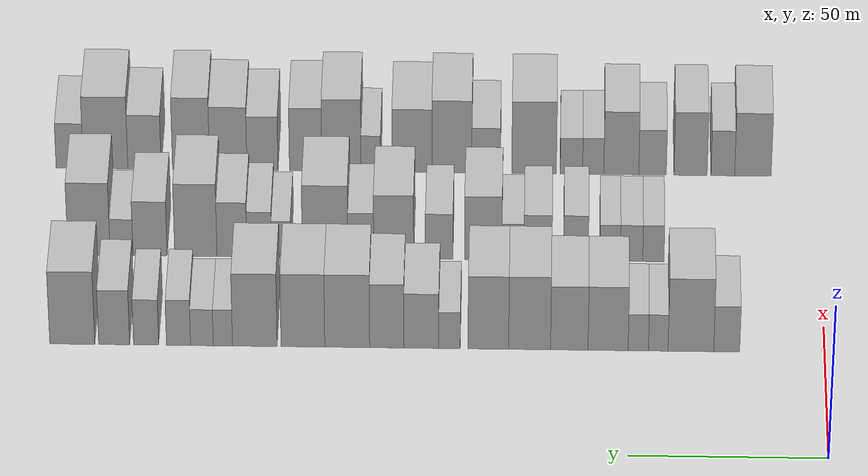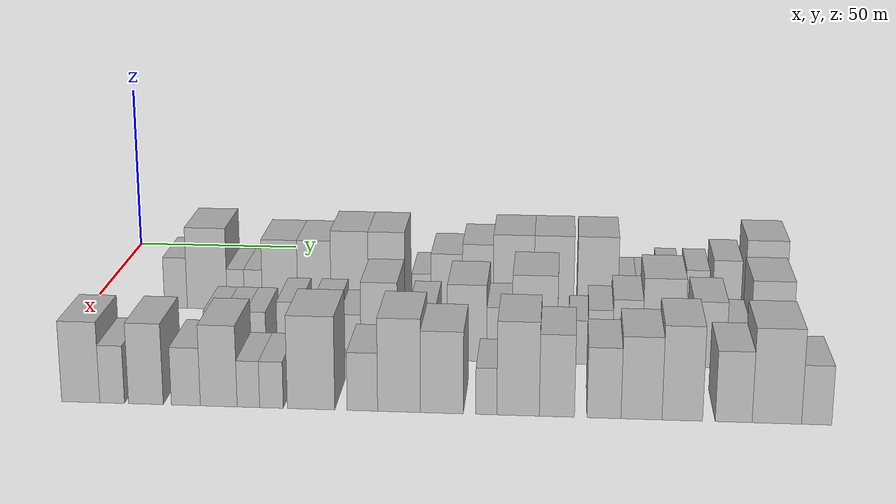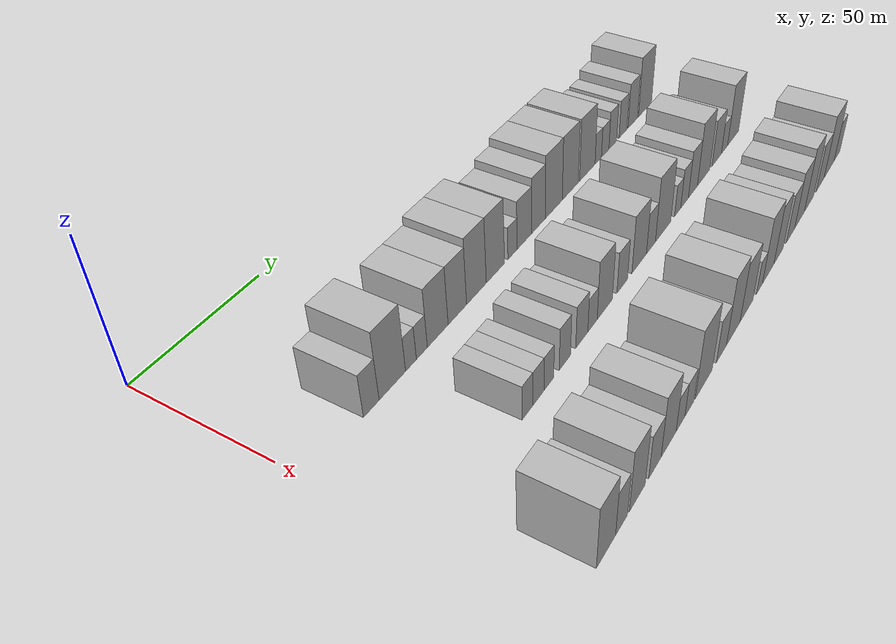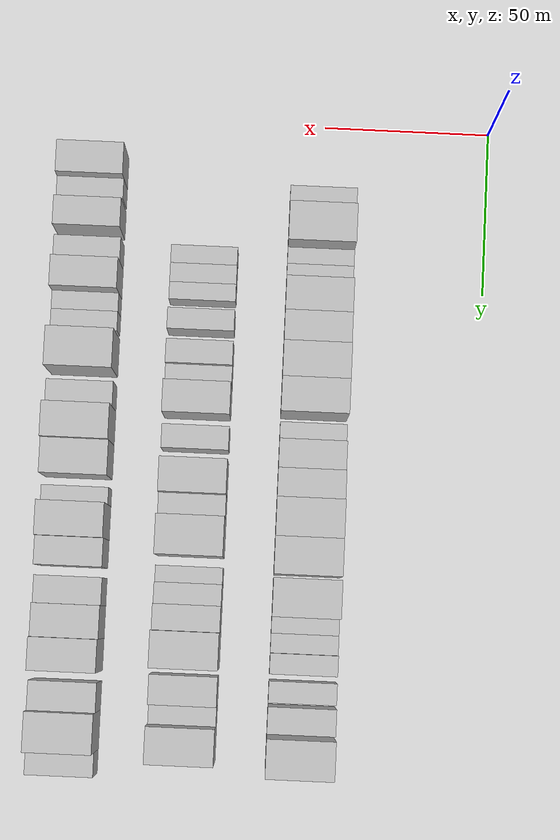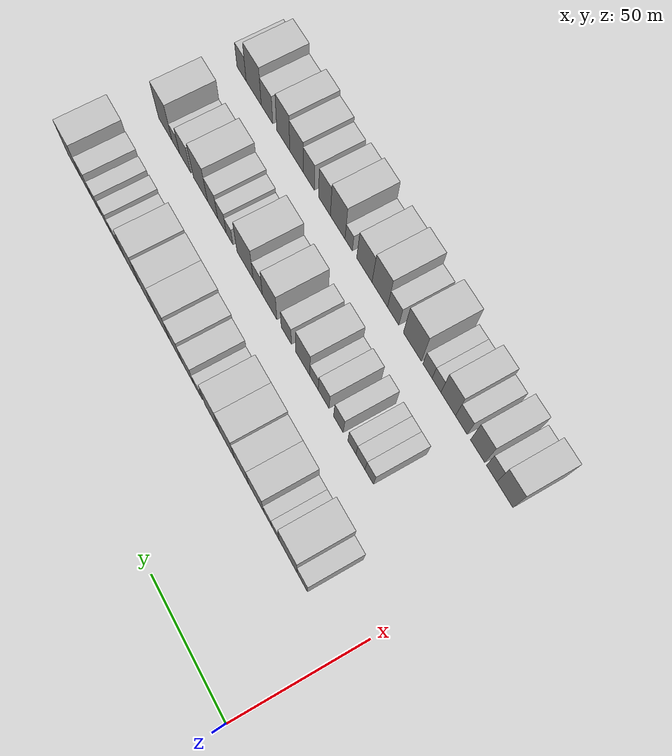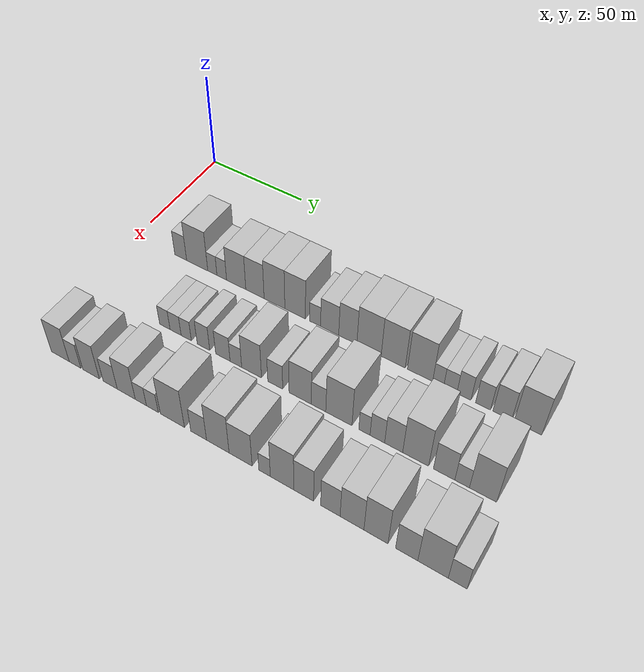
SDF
<sdf version="1.6">
 <world name="default">
  <model name="building_40">
   <static>1</static>
   <pose>50.0000 24.8691 0 0.000000 0.000000 0.000000</pose>
   <link name="link">
    <pose>0 0 7.50 0 0 0</pose>
    <collision name="collision"><geometry><box><size>20.0000 6.5806 15.0000</size></box></geometry></collision>
    <visual name="visual">
     <cast_shadows>0</cast_shadows>
     <geometry><box><size>20.0000 6.5806 15.0000</size></box></geometry>
     <material>
      <script>
       <uri>model://HANNAS_wall/materials/scripts</uri>
       <uri>model://HANNAS_wall/materials/textures</uri>
       <name>vrc/HANNAS_wall</name>
      </script>
     </material>
    </visual>
   </link>
  </model>
  <model name="building_41">
   <static>1</static>
   <pose>50.0000 33.9484 0 0.000000 0.000000 0.000000</pose>
   <link name="link">
    <pose>0 0 12.00 0 0 0</pose>
    <collision name="collision"><geometry><box><size>20.0000 11.5780 24.0000</size></box></geometry></collision>
    <visual name="visual">
     <cast_shadows>0</cast_shadows>
     <geometry><box><size>20.0000 11.5780 24.0000</size></box></geometry>
     <material>
      <script>
       <uri>model://HANNAS_wall/materials/scripts</uri>
       <uri>model://HANNAS_wall/materials/textures</uri>
       <name>vrc/HANNAS_wall</name>
      </script>
     </material>
    </visual>
   </link>
  </model>
  <model name="building_42">
   <static>1</static>
   <pose>50.0000 42.2119 0 0.000000 0.000000 0.000000</pose>
   <link name="link">
    <pose>0 0 6.00 0 0 0</pose>
    <collision name="collision"><geometry><box><size>20.0000 4.9488 12.0000</size></box></geometry></collision>
    <visual name="visual">
     <cast_shadows>0</cast_shadows>
     <geometry><box><size>20.0000 4.9488 12.0000</size></box></geometry>
     <material>
      <script>
       <uri>model://HANNAS_wall/materials/scripts</uri>
       <uri>model://HANNAS_wall/materials/textures</uri>
       <name>vrc/HANNAS_wall</name>
      </script>
     </material>
    </visual>
   </link>
  </model>
  <model name="building_43">
   <static>1</static>
   <pose>50.0000 47.2695 0 0.000000 0.000000 0.000000</pose>
   <link name="link">
    <pose>0 0 6.00 0 0 0</pose>
    <collision name="collision"><geometry><box><size>20.0000 5.1664 12.0000</size></box></geometry></collision>
    <visual name="visual">
     <cast_shadows>0</cast_shadows>
     <geometry><box><size>20.0000 5.1664 12.0000</size></box></geometry>
     <material>
      <script>
       <uri>model://HANNAS_wall/materials/scripts</uri>
       <uri>model://HANNAS_wall/materials/textures</uri>
       <name>vrc/HANNAS_wall</name>
      </script>
     </material>
    </visual>
   </link>
  </model>
  <model name="building_44">
   <static>1</static>
   <pose>50.0000 54.9293 0 0.000000 0.000000 0.000000</pose>
   <link name="link">
    <pose>0 0 10.50 0 0 0</pose>
    <collision name="collision"><geometry><box><size>20.0000 10.1532 21.0000</size></box></geometry></collision>
    <visual name="visual">
     <cast_shadows>0</cast_shadows>
     <geometry><box><size>20.0000 10.1532 21.0000</size></box></geometry>
     <material>
      <script>
       <uri>model://HANNAS_wall/materials/scripts</uri>
       <uri>model://HANNAS_wall/materials/textures</uri>
       <name>vrc/HANNAS_wall</name>
      </script>
     </material>
    </visual>
   </link>
  </model>
  <model name="building_45">
   <static>1</static>
   <pose>50.0000 64.7519 0 0.000000 0.000000 0.000000</pose>
   <link name="link">
    <pose>0 0 10.50 0 0 0</pose>
    <collision name="collision"><geometry><box><size>20.0000 9.4919 21.0000</size></box></geometry></collision>
    <visual name="visual">
     <cast_shadows>0</cast_shadows>
     <geometry><box><size>20.0000 9.4919 21.0000</size></box></geometry>
     <material>
      <script>
       <uri>model://HANNAS_wall/materials/scripts</uri>
       <uri>model://HANNAS_wall/materials/textures</uri>
       <name>vrc/HANNAS_wall</name>
      </script>
     </material>
    </visual>
   </link>
  </model>
  <model name="building_46">
   <static>1</static>
   <pose>50.0000 74.7972 0 0.000000 0.000000 0.000000</pose>
   <link name="link">
    <pose>0 0 12.00 0 0 0</pose>
    <collision name="collision"><geometry><box><size>20.0000 10.5988 24.0000</size></box></geometry></collision>
    <visual name="visual">
     <cast_shadows>0</cast_shadows>
     <geometry><box><size>20.0000 10.5988 24.0000</size></box></geometry>
     <material>
      <script>
       <uri>model://HANNAS_wall/materials/scripts</uri>
       <uri>model://HANNAS_wall/materials/textures</uri>
       <name>vrc/HANNAS_wall</name>
      </script>
     </material>
    </visual>
   </link>
  </model>
  <model name="building_47">
   <static>1</static>
   <pose>50.0000 85.2420 0 0.000000 0.000000 0.000000</pose>
   <link name="link">
    <pose>0 0 12.00 0 0 0</pose>
    <collision name="collision"><geometry><box><size>20.0000 10.2908 24.0000</size></box></geometry></collision>
    <visual name="visual">
     <cast_shadows>0</cast_shadows>
     <geometry><box><size>20.0000 10.2908 24.0000</size></box></geometry>
     <material>
      <script>
       <uri>model://HANNAS_wall/materials/scripts</uri>
       <uri>model://HANNAS_wall/materials/textures</uri>
       <name>vrc/HANNAS_wall</name>
      </script>
     </material>
    </visual>
   </link>
  </model>
  <model name="building_48">
   <static>1</static>
   <pose>50.0000 95.1139 0 0.000000 0.000000 0.000000</pose>
   <link name="link">
    <pose>0 0 6.00 0 0 0</pose>
    <collision name="collision"><geometry><box><size>20.0000 5.4530 12.0000</size></box></geometry></collision>
    <visual name="visual">
     <cast_shadows>0</cast_shadows>
     <geometry><box><size>20.0000 5.4530 12.0000</size></box></geometry>
     <material>
      <script>
       <uri>model://HANNAS_wall/materials/scripts</uri>
       <uri>model://HANNAS_wall/materials/textures</uri>
       <name>vrc/HANNAS_wall</name>
      </script>
     </material>
    </visual>
   </link>
  </model>
  <model name="building_49">
   <static>1</static>
   <pose>50.0000 102.2486 0 0.000000 0.000000 0.000000</pose>
   <link name="link">
    <pose>0 0 9.00 0 0 0</pose>
    <collision name="collision"><geometry><box><size>20.0000 8.8165 18.0000</size></box></geometry></collision>
    <visual name="visual">
     <cast_shadows>0</cast_shadows>
     <geometry><box><size>20.0000 8.8165 18.0000</size></box></geometry>
     <material>
      <script>
       <uri>model://HANNAS_wall/materials/scripts</uri>
       <uri>model://HANNAS_wall/materials/textures</uri>
       <name>vrc/HANNAS_wall</name>
      </script>
     </material>
    </visual>
   </link>
  </model>
  <model name="building_50">
   <static>1</static>
   <pose>50.0000 110.9926 0 0.000000 0.000000 0.000000</pose>
   <link name="link">
    <pose>0 0 10.50 0 0 0</pose>
    <collision name="collision"><geometry><box><size>20.0000 8.6714 21.0000</size></box></geometry></collision>
    <visual name="visual">
     <cast_shadows>0</cast_shadows>
     <geometry><box><size>20.0000 8.6714 21.0000</size></box></geometry>
     <material>
      <script>
       <uri>model://HANNAS_wall/materials/scripts</uri>
       <uri>model://HANNAS_wall/materials/textures</uri>
       <name>vrc/HANNAS_wall</name>
      </script>
     </material>
    </visual>
   </link>
  </model>
  <model name="building_51">
   <static>1</static>
   <pose>50.0000 121.0256 0 0.000000 0.000000 0.000000</pose>
   <link name="link">
    <pose>0 0 12.00 0 0 0</pose>
    <collision name="collision"><geometry><box><size>20.0000 11.3945 24.0000</size></box></geometry></collision>
    <visual name="visual">
     <cast_shadows>0</cast_shadows>
     <geometry><box><size>20.0000 11.3945 24.0000</size></box></geometry>
     <material>
      <script>
       <uri>model://HANNAS_wall/materials/scripts</uri>
       <uri>model://HANNAS_wall/materials/textures</uri>
       <name>vrc/HANNAS_wall</name>
      </script>
     </material>
    </visual>
   </link>
  </model>
  <model name="building_52">
   <static>1</static>
   <pose>50.0000 132.2660 0 0.000000 0.000000 0.000000</pose>
   <link name="link">
    <pose>0 0 12.00 0 0 0</pose>
    <collision name="collision"><geometry><box><size>20.0000 11.0864 24.0000</size></box></geometry></collision>
    <visual name="visual">
     <cast_shadows>0</cast_shadows>
     <geometry><box><size>20.0000 11.0864 24.0000</size></box></geometry>
     <material>
      <script>
       <uri>model://HANNAS_wall/materials/scripts</uri>
       <uri>model://HANNAS_wall/materials/textures</uri>
       <name>vrc/HANNAS_wall</name>
      </script>
     </material>
    </visual>
   </link>
  </model>
  <model name="building_53">
   <static>1</static>
   <pose>50.0000 144.4724 0 0.000000 0.000000 0.000000</pose>
   <link name="link">
    <pose>0 0 12.00 0 0 0</pose>
    <collision name="collision"><geometry><box><size>20.0000 11.3264 24.0000</size></box></geometry></collision>
    <visual name="visual">
     <cast_shadows>0</cast_shadows>
     <geometry><box><size>20.0000 11.3264 24.0000</size></box></geometry>
     <material>
      <script>
       <uri>model://HANNAS_wall/materials/scripts</uri>
       <uri>model://HANNAS_wall/materials/textures</uri>
       <name>vrc/HANNAS_wall</name>
      </script>
     </material>
    </visual>
   </link>
  </model>
  <model name="building_54">
   <static>1</static>
   <pose>50.0000 152.5741 0 0.000000 0.000000 0.000000</pose>
   <link name="link">
    <pose>0 0 6.00 0 0 0</pose>
    <collision name="collision"><geometry><box><size>20.0000 4.8770 12.0000</size></box></geometry></collision>
    <visual name="visual">
     <cast_shadows>0</cast_shadows>
     <geometry><box><size>20.0000 4.8770 12.0000</size></box></geometry>
     <material>
      <script>
       <uri>model://HANNAS_wall/materials/scripts</uri>
       <uri>model://HANNAS_wall/materials/textures</uri>
       <name>vrc/HANNAS_wall</name>
      </script>
     </material>
    </visual>
   </link>
  </model>
  <model name="building_55">
   <static>1</static>
   <pose>50.0000 157.9040 0 0.000000 0.000000 0.000000</pose>
   <link name="link">
    <pose>0 0 6.00 0 0 0</pose>
    <collision name="collision"><geometry><box><size>20.0000 5.7828 12.0000</size></box></geometry></collision>
    <visual name="visual">
     <cast_shadows>0</cast_shadows>
     <geometry><box><size>20.0000 5.7828 12.0000</size></box></geometry>
     <material>
      <script>
       <uri>model://HANNAS_wall/materials/scripts</uri>
       <uri>model://HANNAS_wall/materials/textures</uri>
       <name>vrc/HANNAS_wall</name>
      </script>
     </material>
    </visual>
   </link>
  </model>
  <model name="building_56">
   <static>1</static>
   <pose>50.0000 163.8397 0 0.000000 0.000000 0.000000</pose>
   <link name="link">
    <pose>0 0 7.50 0 0 0</pose>
    <collision name="collision"><geometry><box><size>20.0000 6.0886 15.0000</size></box></geometry></collision>
    <visual name="visual">
     <cast_shadows>0</cast_shadows>
     <geometry><box><size>20.0000 6.0886 15.0000</size></box></geometry>
     <material>
      <script>
       <uri>model://HANNAS_wall/materials/scripts</uri>
       <uri>model://HANNAS_wall/materials/textures</uri>
       <name>vrc/HANNAS_wall</name>
      </script>
     </material>
    </visual>
   </link>
  </model>
  <model name="building_57">
   <static>1</static>
   <pose>50.0000 172.0617 0 0.000000 0.000000 0.000000</pose>
   <link name="link">
    <pose>0 0 7.50 0 0 0</pose>
    <collision name="collision"><geometry><box><size>20.0000 6.3553 15.0000</size></box></geometry></collision>
    <visual name="visual">
     <cast_shadows>0</cast_shadows>
     <geometry><box><size>20.0000 6.3553 15.0000</size></box></geometry>
     <material>
      <script>
       <uri>model://HANNAS_wall/materials/scripts</uri>
       <uri>model://HANNAS_wall/materials/textures</uri>
       <name>vrc/HANNAS_wall</name>
      </script>
     </material>
    </visual>
   </link>
  </model>
  <model name="building_58">
   <static>1</static>
   <pose>50.0000 180.1645 0 0.000000 0.000000 0.000000</pose>
   <link name="link">
    <pose>0 0 9.00 0 0 0</pose>
    <collision name="collision"><geometry><box><size>20.0000 7.8503 18.0000</size></box></geometry></collision>
    <visual name="visual">
     <cast_shadows>0</cast_shadows>
     <geometry><box><size>20.0000 7.8503 18.0000</size></box></geometry>
     <material>
      <script>
       <uri>model://HANNAS_wall/materials/scripts</uri>
       <uri>model://HANNAS_wall/materials/textures</uri>
       <name>vrc/HANNAS_wall</name>
      </script>
     </material>
    </visual>
   </link>
  </model>
  <model name="building_59">
   <static>1</static>
   <pose>50.0000 190.7921 0 0.000000 0.000000 0.000000</pose>
   <link name="link">
    <pose>0 0 12.00 0 0 0</pose>
    <collision name="collision"><geometry><box><size>20.0000 11.4048 24.0000</size></box></geometry></collision>
    <visual name="visual">
     <cast_shadows>0</cast_shadows>
     <geometry><box><size>20.0000 11.4048 24.0000</size></box></geometry>
     <material>
      <script>
       <uri>model://HANNAS_wall/materials/scripts</uri>
       <uri>model://HANNAS_wall/materials/textures</uri>
       <name>vrc/HANNAS_wall</name>
      </script>
     </material>
    </visual>
   </link>
  </model>
  <model name="building_111">
   <static>1</static>
   <pose>85.0000 43.2457 0 0.000000 0.000000 0.000000</pose>
   <link name="link">
    <pose>0 0 6.00 0 0 0</pose>
    <collision name="collision"><geometry><box><size>20.0000 5.4707 12.0000</size></box></geometry></collision>
    <visual name="visual">
     <cast_shadows>0</cast_shadows>
     <geometry><box><size>20.0000 5.4707 12.0000</size></box></geometry>
     <material>
      <script>
       <uri>model://HANNAS_wall/materials/scripts</uri>
       <uri>model://HANNAS_wall/materials/textures</uri>
       <name>vrc/HANNAS_wall</name>
      </script>
     </material>
    </visual>
   </link>
  </model>
  <model name="building_112">
   <static>1</static>
   <pose>85.0000 48.8630 0 0.000000 0.000000 0.000000</pose>
   <link name="link">
    <pose>0 0 6.00 0 0 0</pose>
    <collision name="collision"><geometry><box><size>20.0000 5.7639 12.0000</size></box></geometry></collision>
    <visual name="visual">
     <cast_shadows>0</cast_shadows>
     <geometry><box><size>20.0000 5.7639 12.0000</size></box></geometry>
     <material>
      <script>
       <uri>model://HANNAS_wall/materials/scripts</uri>
       <uri>model://HANNAS_wall/materials/textures</uri>
       <name>vrc/HANNAS_wall</name>
      </script>
     </material>
    </visual>
   </link>
  </model>
  <model name="building_113">
   <static>1</static>
   <pose>85.0000 54.3738 0 0.000000 0.000000 0.000000</pose>
   <link name="link">
    <pose>0 0 6.00 0 0 0</pose>
    <collision name="collision"><geometry><box><size>20.0000 5.2577 12.0000</size></box></geometry></collision>
    <visual name="visual">
     <cast_shadows>0</cast_shadows>
     <geometry><box><size>20.0000 5.2577 12.0000</size></box></geometry>
     <material>
      <script>
       <uri>model://HANNAS_wall/materials/scripts</uri>
       <uri>model://HANNAS_wall/materials/textures</uri>
       <name>vrc/HANNAS_wall</name>
      </script>
     </material>
    </visual>
   </link>
  </model>
  <model name="building_114">
   <static>1</static>
   <pose>85.0000 63.1688 0 0.000000 0.000000 0.000000</pose>
   <link name="link">
    <pose>0 0 7.50 0 0 0</pose>
    <collision name="collision"><geometry><box><size>20.0000 6.3322 15.0000</size></box></geometry></collision>
    <visual name="visual">
     <cast_shadows>0</cast_shadows>
     <geometry><box><size>20.0000 6.3322 15.0000</size></box></geometry>
     <material>
      <script>
       <uri>model://HANNAS_wall/materials/scripts</uri>
       <uri>model://HANNAS_wall/materials/textures</uri>
       <name>vrc/HANNAS_wall</name>
      </script>
     </material>
    </visual>
   </link>
  </model>
  <model name="building_115">
   <static>1</static>
   <pose>85.0000 72.9184 0 0.000000 0.000000 0.000000</pose>
   <link name="link">
    <pose>0 0 7.50 0 0 0</pose>
    <collision name="collision"><geometry><box><size>20.0000 7.1671 15.0000</size></box></geometry></collision>
    <visual name="visual">
     <cast_shadows>0</cast_shadows>
     <geometry><box><size>20.0000 7.1671 15.0000</size></box></geometry>
     <material>
      <script>
       <uri>model://HANNAS_wall/materials/scripts</uri>
       <uri>model://HANNAS_wall/materials/textures</uri>
       <name>vrc/HANNAS_wall</name>
      </script>
     </material>
    </visual>
   </link>
  </model>
  <model name="building_116">
   <static>1</static>
   <pose>85.0000 79.3468 0 0.000000 0.000000 0.000000</pose>
   <link name="link">
    <pose>0 0 6.00 0 0 0</pose>
    <collision name="collision"><geometry><box><size>20.0000 5.6896 12.0000</size></box></geometry></collision>
    <visual name="visual">
     <cast_shadows>0</cast_shadows>
     <geometry><box><size>20.0000 5.6896 12.0000</size></box></geometry>
     <material>
      <script>
       <uri>model://HANNAS_wall/materials/scripts</uri>
       <uri>model://HANNAS_wall/materials/textures</uri>
       <name>vrc/HANNAS_wall</name>
      </script>
     </material>
    </visual>
   </link>
  </model>
  <model name="building_117">
   <static>1</static>
   <pose>85.0000 86.9998 0 0.000000 0.000000 0.000000</pose>
   <link name="link">
    <pose>0 0 10.50 0 0 0</pose>
    <collision name="collision"><geometry><box><size>20.0000 9.6163 21.0000</size></box></geometry></collision>
    <visual name="visual">
     <cast_shadows>0</cast_shadows>
     <geometry><box><size>20.0000 9.6163 21.0000</size></box></geometry>
     <material>
      <script>
       <uri>model://HANNAS_wall/materials/scripts</uri>
       <uri>model://HANNAS_wall/materials/textures</uri>
       <name>vrc/HANNAS_wall</name>
      </script>
     </material>
    </visual>
   </link>
  </model>
  <model name="building_118">
   <static>1</static>
   <pose>85.0000 98.3512 0 0.000000 0.000000 0.000000</pose>
   <link name="link">
    <pose>0 0 7.50 0 0 0</pose>
    <collision name="collision"><geometry><box><size>20.0000 7.0864 15.0000</size></box></geometry></collision>
    <visual name="visual">
     <cast_shadows>0</cast_shadows>
     <geometry><box><size>20.0000 7.0864 15.0000</size></box></geometry>
     <material>
      <script>
       <uri>model://HANNAS_wall/materials/scripts</uri>
       <uri>model://HANNAS_wall/materials/textures</uri>
       <name>vrc/HANNAS_wall</name>
      </script>
     </material>
    </visual>
   </link>
  </model>
  <model name="building_119">
   <static>1</static>
   <pose>85.0000 110.0395 0 0.000000 0.000000 0.000000</pose>
   <link name="link">
    <pose>0 0 10.50 0 0 0</pose>
    <collision name="collision"><geometry><box><size>20.0000 10.2903 21.0000</size></box></geometry></collision>
    <visual name="visual">
     <cast_shadows>0</cast_shadows>
     <geometry><box><size>20.0000 10.2903 21.0000</size></box></geometry>
     <material>
      <script>
       <uri>model://HANNAS_wall/materials/scripts</uri>
       <uri>model://HANNAS_wall/materials/textures</uri>
       <name>vrc/HANNAS_wall</name>
      </script>
     </material>
    </visual>
   </link>
  </model>
  <model name="building_120">
   <static>1</static>
   <pose>85.0000 118.4957 0 0.000000 0.000000 0.000000</pose>
   <link name="link">
    <pose>0 0 7.50 0 0 0</pose>
    <collision name="collision"><geometry><box><size>20.0000 6.6221 15.0000</size></box></geometry></collision>
    <visual name="visual">
     <cast_shadows>0</cast_shadows>
     <geometry><box><size>20.0000 6.6221 15.0000</size></box></geometry>
     <material>
      <script>
       <uri>model://HANNAS_wall/materials/scripts</uri>
       <uri>model://HANNAS_wall/materials/textures</uri>
       <name>vrc/HANNAS_wall</name>
      </script>
     </material>
    </visual>
   </link>
  </model>
  <model name="building_121">
   <static>1</static>
   <pose>85.0000 127.6762 0 0.000000 0.000000 0.000000</pose>
   <link name="link">
    <pose>0 0 12.00 0 0 0</pose>
    <collision name="collision"><geometry><box><size>20.0000 11.7389 24.0000</size></box></geometry></collision>
    <visual name="visual">
     <cast_shadows>0</cast_shadows>
     <geometry><box><size>20.0000 11.7389 24.0000</size></box></geometry>
     <material>
      <script>
       <uri>model://HANNAS_wall/materials/scripts</uri>
       <uri>model://HANNAS_wall/materials/textures</uri>
       <name>vrc/HANNAS_wall</name>
      </script>
     </material>
    </visual>
   </link>
  </model>
  <model name="building_122">
   <static>1</static>
   <pose>85.0000 139.0218 0 0.000000 0.000000 0.000000</pose>
   <link name="link">
    <pose>0 0 6.00 0 0 0</pose>
    <collision name="collision"><geometry><box><size>20.0000 4.9524 12.0000</size></box></geometry></collision>
    <visual name="visual">
     <cast_shadows>0</cast_shadows>
     <geometry><box><size>20.0000 4.9524 12.0000</size></box></geometry>
     <material>
      <script>
       <uri>model://HANNAS_wall/materials/scripts</uri>
       <uri>model://HANNAS_wall/materials/textures</uri>
       <name>vrc/HANNAS_wall</name>
      </script>
     </material>
    </visual>
   </link>
  </model>
  <model name="building_123">
   <static>1</static>
   <pose>85.0000 144.6682 0 0.000000 0.000000 0.000000</pose>
   <link name="link">
    <pose>0 0 7.50 0 0 0</pose>
    <collision name="collision"><geometry><box><size>20.0000 6.3404 15.0000</size></box></geometry></collision>
    <visual name="visual">
     <cast_shadows>0</cast_shadows>
     <geometry><box><size>20.0000 6.3404 15.0000</size></box></geometry>
     <material>
      <script>
       <uri>model://HANNAS_wall/materials/scripts</uri>
       <uri>model://HANNAS_wall/materials/textures</uri>
       <name>vrc/HANNAS_wall</name>
      </script>
     </material>
    </visual>
   </link>
  </model>
  <model name="building_124">
   <static>1</static>
   <pose>85.0000 151.6887 0 0.000000 0.000000 0.000000</pose>
   <link name="link">
    <pose>0 0 9.00 0 0 0</pose>
    <collision name="collision"><geometry><box><size>20.0000 7.7005 18.0000</size></box></geometry></collision>
    <visual name="visual">
     <cast_shadows>0</cast_shadows>
     <geometry><box><size>20.0000 7.7005 18.0000</size></box></geometry>
     <material>
      <script>
       <uri>model://HANNAS_wall/materials/scripts</uri>
       <uri>model://HANNAS_wall/materials/textures</uri>
       <name>vrc/HANNAS_wall</name>
      </script>
     </material>
    </visual>
   </link>
  </model>
  <model name="building_125">
   <static>1</static>
   <pose>85.0000 160.9731 0 0.000000 0.000000 0.000000</pose>
   <link name="link">
    <pose>0 0 12.00 0 0 0</pose>
    <collision name="collision"><geometry><box><size>20.0000 10.8684 24.0000</size></box></geometry></collision>
    <visual name="visual">
     <cast_shadows>0</cast_shadows>
     <geometry><box><size>20.0000 10.8684 24.0000</size></box></geometry>
     <material>
      <script>
       <uri>model://HANNAS_wall/materials/scripts</uri>
       <uri>model://HANNAS_wall/materials/textures</uri>
       <name>vrc/HANNAS_wall</name>
      </script>
     </material>
    </visual>
   </link>
  </model>
  <model name="building_126">
   <static>1</static>
   <pose>85.0000 172.7910 0 0.000000 0.000000 0.000000</pose>
   <link name="link">
    <pose>0 0 9.00 0 0 0</pose>
    <collision name="collision"><geometry><box><size>20.0000 8.7673 18.0000</size></box></geometry></collision>
    <visual name="visual">
     <cast_shadows>0</cast_shadows>
     <geometry><box><size>20.0000 8.7673 18.0000</size></box></geometry>
     <material>
      <script>
       <uri>model://HANNAS_wall/materials/scripts</uri>
       <uri>model://HANNAS_wall/materials/textures</uri>
       <name>vrc/HANNAS_wall</name>
      </script>
     </material>
    </visual>
   </link>
  </model>
  <model name="building_127">
   <static>1</static>
   <pose>85.0000 180.1257 0 0.000000 0.000000 0.000000</pose>
   <link name="link">
    <pose>0 0 6.00 0 0 0</pose>
    <collision name="collision"><geometry><box><size>20.0000 5.9022 12.0000</size></box></geometry></collision>
    <visual name="visual">
     <cast_shadows>0</cast_shadows>
     <geometry><box><size>20.0000 5.9022 12.0000</size></box></geometry>
     <material>
      <script>
       <uri>model://HANNAS_wall/materials/scripts</uri>
       <uri>model://HANNAS_wall/materials/textures</uri>
       <name>vrc/HANNAS_wall</name>
      </script>
     </material>
    </visual>
   </link>
  </model>
  <model name="building_128">
   <static>1</static>
   <pose>85.0000 188.4907 0 0.000000 0.000000 0.000000</pose>
   <link name="link">
    <pose>0 0 12.00 0 0 0</pose>
    <collision name="collision"><geometry><box><size>20.0000 10.8279 24.0000</size></box></geometry></collision>
    <visual name="visual">
     <cast_shadows>0</cast_shadows>
     <geometry><box><size>20.0000 10.8279 24.0000</size></box></geometry>
     <material>
      <script>
       <uri>model://HANNAS_wall/materials/scripts</uri>
       <uri>model://HANNAS_wall/materials/textures</uri>
       <name>vrc/HANNAS_wall</name>
      </script>
     </material>
    </visual>
   </link>
  </model>
  <model name="building_194">
   <static>1</static>
   <pose>120.0000 17.0253 0 0.000000 0.000000 0.000000</pose>
   <link name="link">
    <pose>0 0 10.50 0 0 0</pose>
    <collision name="collision"><geometry><box><size>20.0000 9.5355 21.0000</size></box></geometry></collision>
    <visual name="visual">
     <cast_shadows>0</cast_shadows>
     <geometry><box><size>20.0000 9.5355 21.0000</size></box></geometry>
     <material>
      <script>
       <uri>model://HANNAS_wall/materials/scripts</uri>
       <uri>model://HANNAS_wall/materials/textures</uri>
       <name>vrc/HANNAS_wall</name>
      </script>
     </material>
    </visual>
   </link>
  </model>
  <model name="building_195">
   <static>1</static>
   <pose>120.0000 24.8803 0 0.000000 0.000000 0.000000</pose>
   <link name="link">
    <pose>0 0 7.50 0 0 0</pose>
    <collision name="collision"><geometry><box><size>20.0000 6.1745 15.0000</size></box></geometry></collision>
    <visual name="visual">
     <cast_shadows>0</cast_shadows>
     <geometry><box><size>20.0000 6.1745 15.0000</size></box></geometry>
     <material>
      <script>
       <uri>model://HANNAS_wall/materials/scripts</uri>
       <uri>model://HANNAS_wall/materials/textures</uri>
       <name>vrc/HANNAS_wall</name>
      </script>
     </material>
    </visual>
   </link>
  </model>
  <model name="building_196">
   <static>1</static>
   <pose>120.0000 33.2991 0 0.000000 0.000000 0.000000</pose>
   <link name="link">
    <pose>0 0 10.50 0 0 0</pose>
    <collision name="collision"><geometry><box><size>20.0000 8.6632 21.0000</size></box></geometry></collision>
    <visual name="visual">
     <cast_shadows>0</cast_shadows>
     <geometry><box><size>20.0000 8.6632 21.0000</size></box></geometry>
     <material>
      <script>
       <uri>model://HANNAS_wall/materials/scripts</uri>
       <uri>model://HANNAS_wall/materials/textures</uri>
       <name>vrc/HANNAS_wall</name>
      </script>
     </material>
    </visual>
   </link>
  </model>
  <model name="building_197">
   <static>1</static>
   <pose>120.0000 43.2289 0 0.000000 0.000000 0.000000</pose>
   <link name="link">
    <pose>0 0 7.50 0 0 0</pose>
    <collision name="collision"><geometry><box><size>20.0000 7.1964 15.0000</size></box></geometry></collision>
    <visual name="visual">
     <cast_shadows>0</cast_shadows>
     <geometry><box><size>20.0000 7.1964 15.0000</size></box></geometry>
     <material>
      <script>
       <uri>model://HANNAS_wall/materials/scripts</uri>
       <uri>model://HANNAS_wall/materials/textures</uri>
       <name>vrc/HANNAS_wall</name>
      </script>
     </material>
    </visual>
   </link>
  </model>
  <model name="building_198">
   <static>1</static>
   <pose>120.0000 51.3876 0 0.000000 0.000000 0.000000</pose>
   <link name="link">
    <pose>0 0 10.50 0 0 0</pose>
    <collision name="collision"><geometry><box><size>20.0000 9.1209 21.0000</size></box></geometry></collision>
    <visual name="visual">
     <cast_shadows>0</cast_shadows>
     <geometry><box><size>20.0000 9.1209 21.0000</size></box></geometry>
     <material>
      <script>
       <uri>model://HANNAS_wall/materials/scripts</uri>
       <uri>model://HANNAS_wall/materials/textures</uri>
       <name>vrc/HANNAS_wall</name>
      </script>
     </material>
    </visual>
   </link>
  </model>
  <model name="building_199">
   <static>1</static>
   <pose>120.0000 58.7207 0 0.000000 0.000000 0.000000</pose>
   <link name="link">
    <pose>0 0 6.00 0 0 0</pose>
    <collision name="collision"><geometry><box><size>20.0000 5.5453 12.0000</size></box></geometry></collision>
    <visual name="visual">
     <cast_shadows>0</cast_shadows>
     <geometry><box><size>20.0000 5.5453 12.0000</size></box></geometry>
     <material>
      <script>
       <uri>model://HANNAS_wall/materials/scripts</uri>
       <uri>model://HANNAS_wall/materials/textures</uri>
       <name>vrc/HANNAS_wall</name>
      </script>
     </material>
    </visual>
   </link>
  </model>
  <model name="building_200">
   <static>1</static>
   <pose>120.0000 64.4098 0 0.000000 0.000000 0.000000</pose>
   <link name="link">
    <pose>0 0 6.00 0 0 0</pose>
    <collision name="collision"><geometry><box><size>20.0000 5.8330 12.0000</size></box></geometry></collision>
    <visual name="visual">
     <cast_shadows>0</cast_shadows>
     <geometry><box><size>20.0000 5.8330 12.0000</size></box></geometry>
     <material>
      <script>
       <uri>model://HANNAS_wall/materials/scripts</uri>
       <uri>model://HANNAS_wall/materials/textures</uri>
       <name>vrc/HANNAS_wall</name>
      </script>
     </material>
    </visual>
   </link>
  </model>
  <model name="building_201">
   <static>1</static>
   <pose>120.0000 74.1526 0 0.000000 0.000000 0.000000</pose>
   <link name="link">
    <pose>0 0 12.00 0 0 0</pose>
    <collision name="collision"><geometry><box><size>20.0000 11.6526 24.0000</size></box></geometry></collision>
    <visual name="visual">
     <cast_shadows>0</cast_shadows>
     <geometry><box><size>20.0000 11.6526 24.0000</size></box></geometry>
     <material>
      <script>
       <uri>model://HANNAS_wall/materials/scripts</uri>
       <uri>model://HANNAS_wall/materials/textures</uri>
       <name>vrc/HANNAS_wall</name>
      </script>
     </material>
    </visual>
   </link>
  </model>
  <model name="building_202">
   <static>1</static>
   <pose>120.0000 86.6971 0 0.000000 0.000000 0.000000</pose>
   <link name="link">
    <pose>0 0 7.50 0 0 0</pose>
    <collision name="collision"><geometry><box><size>20.0000 7.4364 15.0000</size></box></geometry></collision>
    <visual name="visual">
     <cast_shadows>0</cast_shadows>
     <geometry><box><size>20.0000 7.4364 15.0000</size></box></geometry>
     <material>
      <script>
       <uri>model://HANNAS_wall/materials/scripts</uri>
       <uri>model://HANNAS_wall/materials/textures</uri>
       <name>vrc/HANNAS_wall</name>
      </script>
     </material>
    </visual>
   </link>
  </model>
  <model name="building_203">
   <static>1</static>
   <pose>120.0000 95.6328 0 0.000000 0.000000 0.000000</pose>
   <link name="link">
    <pose>0 0 12.00 0 0 0</pose>
    <collision name="collision"><geometry><box><size>20.0000 10.4350 24.0000</size></box></geometry></collision>
    <visual name="visual">
     <cast_shadows>0</cast_shadows>
     <geometry><box><size>20.0000 10.4350 24.0000</size></box></geometry>
     <material>
      <script>
       <uri>model://HANNAS_wall/materials/scripts</uri>
       <uri>model://HANNAS_wall/materials/textures</uri>
       <name>vrc/HANNAS_wall</name>
      </script>
     </material>
    </visual>
   </link>
  </model>
  <model name="building_204">
   <static>1</static>
   <pose>120.0000 106.0546 0 0.000000 0.000000 0.000000</pose>
   <link name="link">
    <pose>0 0 10.50 0 0 0</pose>
    <collision name="collision"><geometry><box><size>20.0000 10.4085 21.0000</size></box></geometry></collision>
    <visual name="visual">
     <cast_shadows>0</cast_shadows>
     <geometry><box><size>20.0000 10.4085 21.0000</size></box></geometry>
     <material>
      <script>
       <uri>model://HANNAS_wall/materials/scripts</uri>
       <uri>model://HANNAS_wall/materials/textures</uri>
       <name>vrc/HANNAS_wall</name>
      </script>
     </material>
    </visual>
   </link>
  </model>
  <model name="building_205">
   <static>1</static>
   <pose>120.0000 116.8071 0 0.000000 0.000000 0.000000</pose>
   <link name="link">
    <pose>0 0 6.00 0 0 0</pose>
    <collision name="collision"><geometry><box><size>20.0000 5.0966 12.0000</size></box></geometry></collision>
    <visual name="visual">
     <cast_shadows>0</cast_shadows>
     <geometry><box><size>20.0000 5.0966 12.0000</size></box></geometry>
     <material>
      <script>
       <uri>model://HANNAS_wall/materials/scripts</uri>
       <uri>model://HANNAS_wall/materials/textures</uri>
       <name>vrc/HANNAS_wall</name>
      </script>
     </material>
    </visual>
   </link>
  </model>
  <model name="building_206">
   <static>1</static>
   <pose>120.0000 124.4766 0 0.000000 0.000000 0.000000</pose>
   <link name="link">
    <pose>0 0 12.00 0 0 0</pose>
    <collision name="collision"><geometry><box><size>20.0000 10.2423 24.0000</size></box></geometry></collision>
    <visual name="visual">
     <cast_shadows>0</cast_shadows>
     <geometry><box><size>20.0000 10.2423 24.0000</size></box></geometry>
     <material>
      <script>
       <uri>model://HANNAS_wall/materials/scripts</uri>
       <uri>model://HANNAS_wall/materials/textures</uri>
       <name>vrc/HANNAS_wall</name>
      </script>
     </material>
    </visual>
   </link>
  </model>
  <model name="building_207">
   <static>1</static>
   <pose>120.0000 133.8290 0 0.000000 0.000000 0.000000</pose>
   <link name="link">
    <pose>0 0 10.50 0 0 0</pose>
    <collision name="collision"><geometry><box><size>20.0000 8.4626 21.0000</size></box></geometry></collision>
    <visual name="visual">
     <cast_shadows>0</cast_shadows>
     <geometry><box><size>20.0000 8.4626 21.0000</size></box></geometry>
     <material>
      <script>
       <uri>model://HANNAS_wall/materials/scripts</uri>
       <uri>model://HANNAS_wall/materials/textures</uri>
       <name>vrc/HANNAS_wall</name>
      </script>
     </material>
    </visual>
   </link>
  </model>
  <model name="building_208">
   <static>1</static>
   <pose>120.0000 145.1243 0 0.000000 0.000000 0.000000</pose>
   <link name="link">
    <pose>0 0 9.00 0 0 0</pose>
    <collision name="collision"><geometry><box><size>20.0000 8.1281 18.0000</size></box></geometry></collision>
    <visual name="visual">
     <cast_shadows>0</cast_shadows>
     <geometry><box><size>20.0000 8.1281 18.0000</size></box></geometry>
     <material>
      <script>
       <uri>model://HANNAS_wall/materials/scripts</uri>
       <uri>model://HANNAS_wall/materials/textures</uri>
       <name>vrc/HANNAS_wall</name>
      </script>
     </material>
    </visual>
   </link>
  </model>
  <model name="building_209">
   <static>1</static>
   <pose>120.0000 154.0725 0 0.000000 0.000000 0.000000</pose>
   <link name="link">
    <pose>0 0 10.50 0 0 0</pose>
    <collision name="collision"><geometry><box><size>20.0000 9.7681 21.0000</size></box></geometry></collision>
    <visual name="visual">
     <cast_shadows>0</cast_shadows>
     <geometry><box><size>20.0000 9.7681 21.0000</size></box></geometry>
     <material>
      <script>
       <uri>model://HANNAS_wall/materials/scripts</uri>
       <uri>model://HANNAS_wall/materials/textures</uri>
       <name>vrc/HANNAS_wall</name>
      </script>
     </material>
    </visual>
   </link>
  </model>
  <model name="building_210">
   <static>1</static>
   <pose>120.0000 163.7934 0 0.000000 0.000000 0.000000</pose>
   <link name="link">
    <pose>0 0 12.00 0 0 0</pose>
    <collision name="collision"><geometry><box><size>20.0000 9.6738 24.0000</size></box></geometry></collision>
    <visual name="visual">
     <cast_shadows>0</cast_shadows>
     <geometry><box><size>20.0000 9.6738 24.0000</size></box></geometry>
     <material>
      <script>
       <uri>model://HANNAS_wall/materials/scripts</uri>
       <uri>model://HANNAS_wall/materials/textures</uri>
       <name>vrc/HANNAS_wall</name>
      </script>
     </material>
    </visual>
   </link>
  </model>
  <model name="building_211">
   <static>1</static>
   <pose>120.0000 175.9813 0 0.000000 0.000000 0.000000</pose>
   <link name="link">
    <pose>0 0 9.00 0 0 0</pose>
    <collision name="collision"><geometry><box><size>20.0000 8.7020 18.0000</size></box></geometry></collision>
    <visual name="visual">
     <cast_shadows>0</cast_shadows>
     <geometry><box><size>20.0000 8.7020 18.0000</size></box></geometry>
     <material>
      <script>
       <uri>model://HANNAS_wall/materials/scripts</uri>
       <uri>model://HANNAS_wall/materials/textures</uri>
       <name>vrc/HANNAS_wall</name>
      </script>
     </material>
    </visual>
   </link>
  </model>
  <model name="building_212">
   <static>1</static>
   <pose>120.0000 186.1604 0 0.000000 0.000000 0.000000</pose>
   <link name="link">
    <pose>0 0 12.00 0 0 0</pose>
    <collision name="collision"><geometry><box><size>20.0000 11.6561 24.0000</size></box></geometry></collision>
    <visual name="visual">
     <cast_shadows>0</cast_shadows>
     <geometry><box><size>20.0000 11.6561 24.0000</size></box></geometry>
     <material>
      <script>
       <uri>model://HANNAS_wall/materials/scripts</uri>
       <uri>model://HANNAS_wall/materials/textures</uri>
       <name>vrc/HANNAS_wall</name>
      </script>
     </material>
    </visual>
   </link>
  </model>
  <model name="building_213">
   <static>1</static>
   <pose>120.0000 195.5404 0 0.000000 0.000000 0.000000</pose>
   <link name="link">
    <pose>0 0 7.50 0 0 0</pose>
    <collision name="collision"><geometry><box><size>20.0000 7.1040 15.0000</size></box></geometry></collision>
    <visual name="visual">
     <cast_shadows>0</cast_shadows>
     <geometry><box><size>20.0000 7.1040 15.0000</size></box></geometry>
     <material>
      <script>
       <uri>model://HANNAS_wall/materials/scripts</uri>
       <uri>model://HANNAS_wall/materials/textures</uri>
       <name>vrc/HANNAS_wall</name>
      </script>
     </material>
    </visual>
   </link>
  </model>
 </world>
</sdf>
